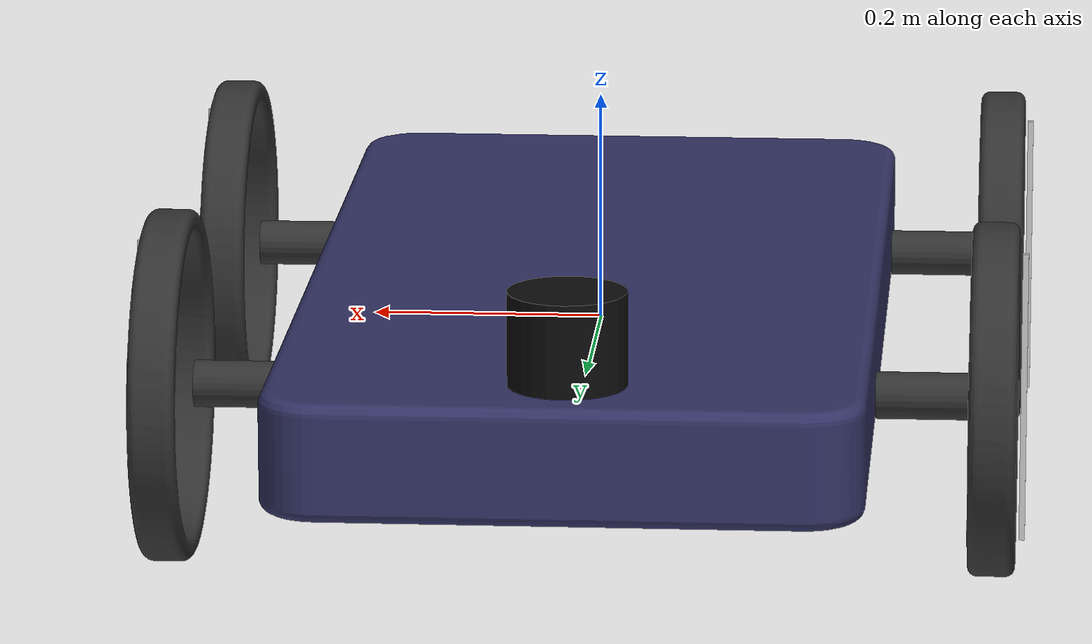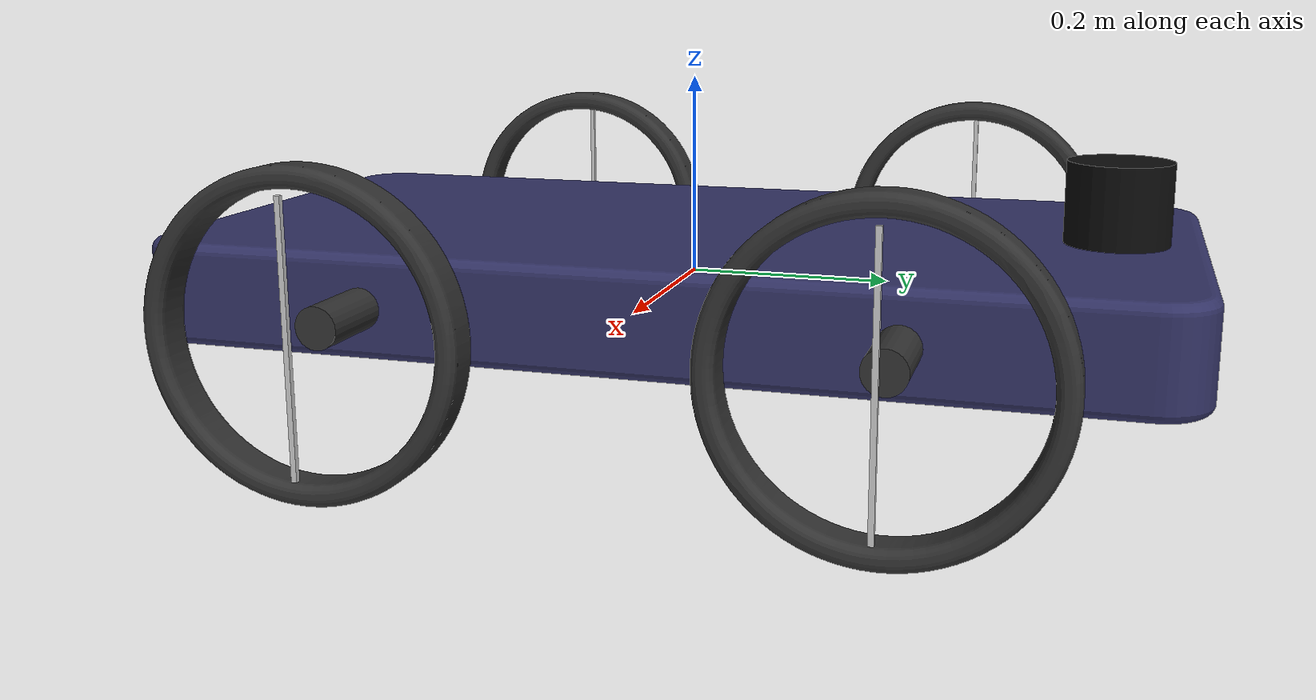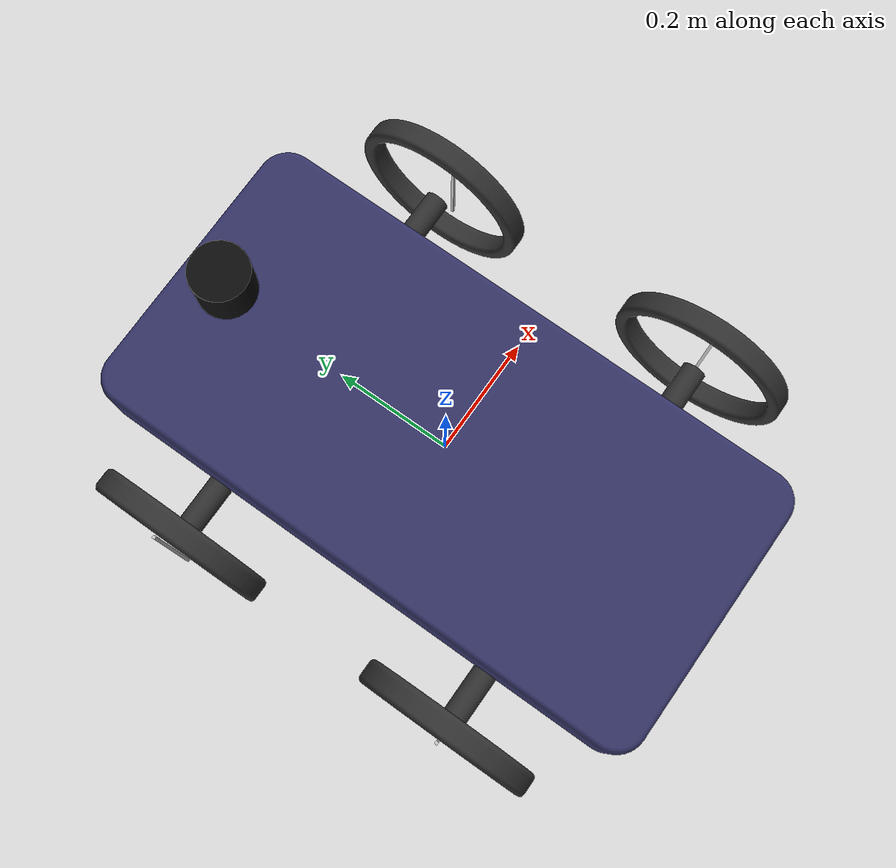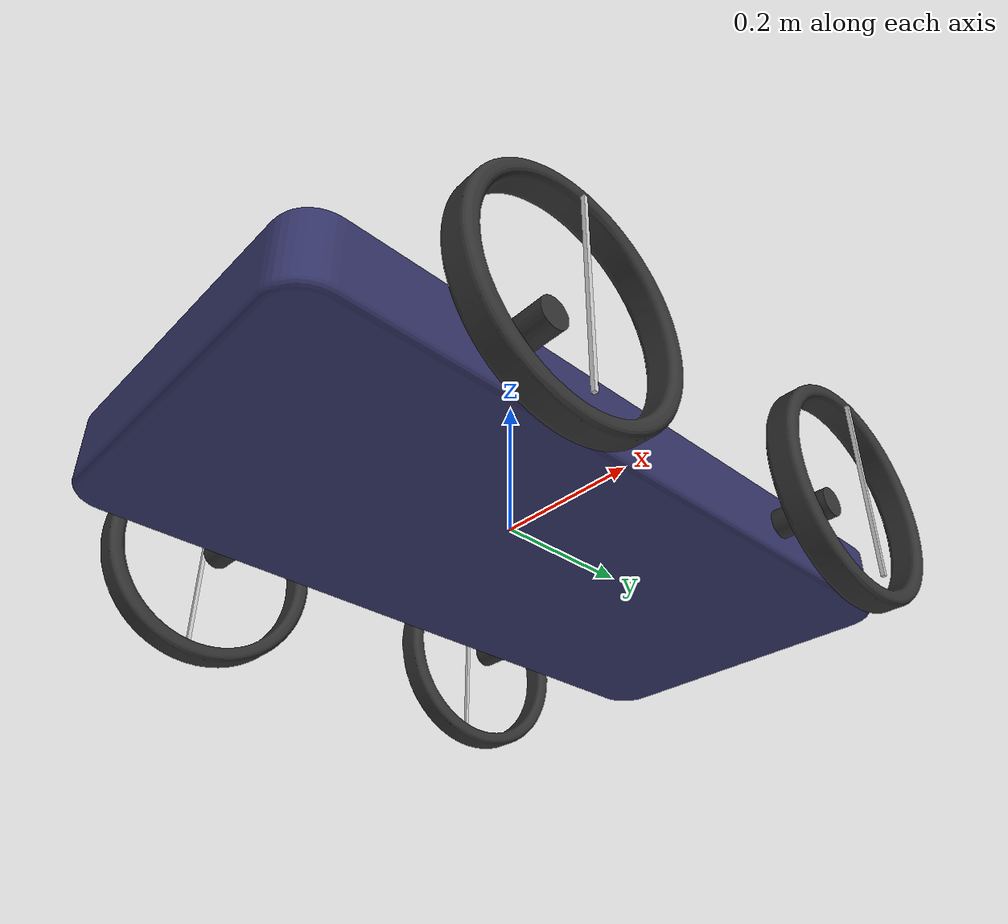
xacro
<?xml version="1.0"?>

<robot name="my_robot" xmlns:xacro="http://www.ros.org/wiki/xacro">
    <xacro:include filename="$(find final_project)/urdf/robot.gazebo" />

    <xacro:property name="pi" value="3.14159"/>

    <link name="chassis">
        <inertial>
            <mass value="10"/>
            <origin xyz="0 0 0.3" rpy="0 0 0"/>
            <inertia ixx="1.5417" ixy="0" ixz="0" iyy="3.467" iyz="0" izz="4.742" />
        </inertial>

        <visual>
            <origin xyz="-0.25 -0.5 -0.05" rpy="0 0 0"/>
            <geometry>
                <mesh filename="package://final_project/urdf/meshes/Chassis.STL"/>
            </geometry>
            <material name="Blue">
                <color rgba="0.2 0.2 0.4 1"/>
            </material>
        </visual>
        <collision>
            <geometry>
                <box size="0.5 1 0.1"/>
            </geometry>
        </collision>
    </link>

    <joint name="joint_chassis_left_under_wheel" type="continuous">
        <origin rpy="0 0 0" xyz="-0.25 -0.25 0" />
        <child link="left_under_wheel" />
        <parent link="chassis" />
        <axis rpy="0 0 0" xyz="1 0 0" />
        <limit effort="10000" velocity="1000" />
        <joint_properties damping="1.0" friction="1.0" />
    </joint>

    <link name="left_under_wheel">
        <inertial>
            <mass value="1"/>
            <origin xyz="0 0 0" rpy="0 0 0"/>
            <inertia ixx="1.5417" ixy="0" ixz="0" iyy="3.467" iyz="0" izz="4.742" />
        </inertial>

        <visual>
            <origin xyz="-0.12 -0.15 0.15" rpy="0 ${pi/2} 0"/>
            <geometry>
                <mesh filename="package://final_project/urdf/meshes/Wheel.STL"/>
            </geometry>
            <material name="Black">
                <color rgba="0.2 0.2 0.2 1"/>
            </material>
        </visual>
        <collision>
            <origin xyz="-0.1 0 0" rpy="0 ${pi/2} 0"/>
            <geometry>
                <cylinder length="0.04" radius="0.15"/>
            </geometry>
        </collision>

        <visual>
            <origin xyz="-0.04 0 0" rpy="0 ${pi/2} 0"/>
            <geometry>
                <cylinder length="0.08" radius="0.02"/>
            </geometry>
            <material name="Black">
                <color rgba="0.2 0.2 0.2 1"/>
            </material>
        </visual>
        <collision>
            <origin xyz="-0.04 0 0" rpy="0 ${pi/2} 0"/>
            <geometry>
                <cylinder length="0.08" radius="0.02"/>
            </geometry>
        </collision>

        <visual>
            <origin xyz="-0.125 0 0" rpy="0 ${pi/2} 0"/>
            <geometry>
                <box size="0.25 0.005 0.005"/>
            </geometry>
            <material name="White">
                <color rgba="0.8 0.8 0.8 1"/>
            </material>
        </visual>
    </link>

    <joint name="joint_chassis_right_under_wheel" type="continuous">
        <origin rpy="0 0 0" xyz="0.25 -0.25 0" />
        <child link="right_under_wheel" />
        <parent link="chassis" />
        <axis rpy="0 0 0" xyz="1 0 0" />
        <limit effort="10000" velocity="1000" />
        <joint_properties damping="1.0" friction="1.0" />
    </joint>

    <link name="right_under_wheel">
        <inertial>
            <mass value="1"/>
            <origin xyz="0 0 0" rpy="0 0 0"/>
            <inertia ixx="1.5417" ixy="0" ixz="0" iyy="3.467" iyz="0" izz="4.742" />
        </inertial>

        <visual>
            <origin xyz="0.08 -0.15 0.15" rpy="0 ${pi/2} 0"/>
            <geometry>
                <mesh filename="package://final_project/urdf/meshes/Wheel.STL"/>
            </geometry>
            <material name="Black">
                <color rgba="0.2 0.2 0.2 1"/>
            </material>
        </visual>
        <collision>
            <origin xyz="0.1 0 0" rpy="0 ${pi/2} 0"/>
            <geometry>
                <cylinder length="0.04" radius="0.15"/>
            </geometry>
        </collision>

        <visual>
            <origin xyz="0.04 0 0" rpy="0 ${pi/2} 0"/>
            <geometry>
                <cylinder length="0.08" radius="0.02"/>
            </geometry>
            <material name="Black">
                <color rgba="0.2 0.2 0.2 1"/>
            </material>
        </visual>
        <collision>
            <origin xyz="0.04 0 0" rpy="0 ${pi/2} 0"/>
            <geometry>
                <cylinder length="0.08" radius="0.02"/>
            </geometry>
        </collision>

        <visual>
            <origin xyz="0.125 0 0" rpy="0 ${pi/2} 0"/>
            <geometry>
                <box size="0.25 0.005 0.005"/>
            </geometry>
            <material name="White">
                <color rgba="0.8 0.8 0.8 1"/>
            </material>
        </visual>
    </link>

    <joint name="joint_chassis_left_upper_wheel" type="continuous">
        <origin rpy="0 0 0" xyz="-0.25 0.25 0" />
        <child link="left_upper_wheel" />
        <parent link="chassis" />
        <axis rpy="0 0 0" xyz="1 0 0" />
        <limit effort="10000" velocity="1000" />
        <joint_properties damping="1.0" friction="1.0" />
    </joint>

    <link name="left_upper_wheel">
        <inertial>
            <mass value="1"/>
            <origin xyz="0 0 0" rpy="0 0 0"/>
            <inertia ixx="1.5417" ixy="0" ixz="0" iyy="3.467" iyz="0" izz="4.742" />
        </inertial>

        <visual>
            <origin xyz="-0.12 -0.15 0.15" rpy="0 ${pi/2} 0"/>
            <geometry>
                <mesh filename="package://final_project/urdf/meshes/Wheel.STL"/>
            </geometry>
            <material name="Black">
                <color rgba="0.2 0.2 0.2 1"/>
            </material>
        </visual>
        <collision>
            <origin xyz="-0.1 0 0" rpy="0 ${pi/2} 0"/>
            <geometry>
                <cylinder length="0.04" radius="0.15"/>
            </geometry>
        </collision>

        <visual>
            <origin xyz="-0.04 0 0" rpy="0 ${pi/2} 0"/>
            <geometry>
                <cylinder length="0.08" radius="0.02"/>
            </geometry>
            <material name="Black">
                <color rgba="0.2 0.2 0.2 1"/>
            </material>
        </visual>
        <collision>
            <origin xyz="-0.04 0 0" rpy="0 ${pi/2} 0"/>
            <geometry>
                <cylinder length="0.08" radius="0.02"/>
            </geometry>
        </collision>

        <visual>
            <origin xyz="-0.125 0 0" rpy="0 ${pi/2} 0"/>
            <geometry>
                <box size="0.25 0.005 0.005"/>
            </geometry>
            <material name="White">
                <color rgba="0.8 0.8 0.8 1"/>
            </material>
        </visual>
    </link>

    <joint name="joint_chassis_right_upper_wheel" type="continuous">
        <origin rpy="0 0 0" xyz="0.25 0.25 0" />
        <child link="right_upper_wheel" />
        <parent link="chassis" />
        <axis rpy="0 0 0" xyz="1 0 0" />
        <limit effort="10000" velocity="1000" />
        <joint_properties damping="1.0" friction="1.0" />
    </joint>

    <link name="right_upper_wheel">
        <inertial>
            <mass value="1"/>
            <origin xyz="0 0 0" rpy="0 0 0"/>
            <inertia ixx="1.5417" ixy="0" ixz="0" iyy="3.467" iyz="0" izz="4.742" />
        </inertial>

        <visual>
            <origin xyz="0.08 -0.15 0.15" rpy="0 ${pi/2} 0"/>
            <geometry>
                <mesh filename="package://final_project/urdf/meshes/Wheel.STL"/>
            </geometry>
            <material name="Black">
                <color rgba="0.2 0.2 0.2 1"/>
            </material>
        </visual>
        <collision>
            <origin xyz="0.1 0 0" rpy="0 ${pi/2} 0"/>
            <geometry>
                <cylinder length="0.04" radius="0.15"/>
            </geometry>
        </collision>

        <visual>
            <origin xyz="0.04 0 0" rpy="0 ${pi/2} 0"/>
            <geometry>
                <cylinder length="0.08" radius="0.02"/>
            </geometry>
            <material name="Black">
                <color rgba="0.2 0.2 0.2 1"/>
            </material>
        </visual>
        <collision>
            <origin xyz="0.04 0 0" rpy="0 ${pi/2} 0"/>
            <geometry>
                <cylinder length="0.08" radius="0.02"/>
            </geometry>
        </collision>

        <visual>
            <origin xyz="0.125 0 0" rpy="0 ${pi/2} 0"/>
            <geometry>
                <box size="0.25 0.005 0.005"/>
            </geometry>
            <material name="White">
                <color rgba="0.8 0.8 0.8 1"/>
            </material>
        </visual>
    </link>

    <joint name="joint_chassis_laser_sensor" type="fixed">
        <origin rpy="0 0 0" xyz="0 0.42 0.05" />
        <child link="laser_sensor" />
        <parent link="chassis" />
        <joint_properties damping="1.0" friction="1.0" />
    </joint>

    <link name="laser_sensor">
        <inertial>
            <mass value="0.5"/>
            <origin xyz="0 0 0" rpy="0 0 0"/>
            <inertia ixx="1.5417" ixy="0" ixz="0" iyy="3.467" iyz="0" izz="4.742" />
        </inertial>

        <visual>
            <origin xyz="0 0 0.04" rpy="0 0 0"/>
            <geometry>
                <cylinder length="0.08" radius="0.05"/>
            </geometry>
            <material name="Black">
                <color rgba="0.05 0.05 0.05 1"/>
            </material>
        </visual>
        <collision>
            <origin xyz="0 0 0.04" rpy="0 0 0"/>
            <geometry>
                <cylinder length="0.08" radius="0.05"/>
            </geometry>
        </collision>
    </link>

</robot>
